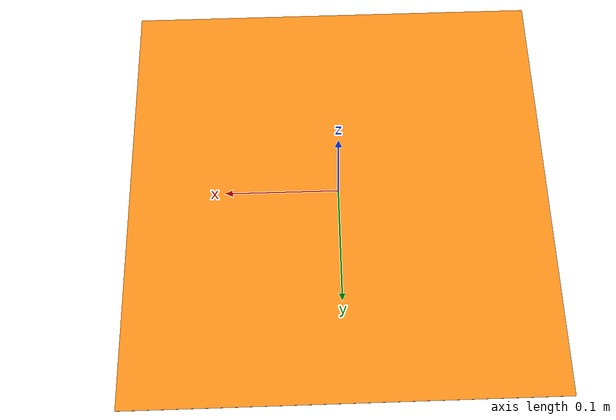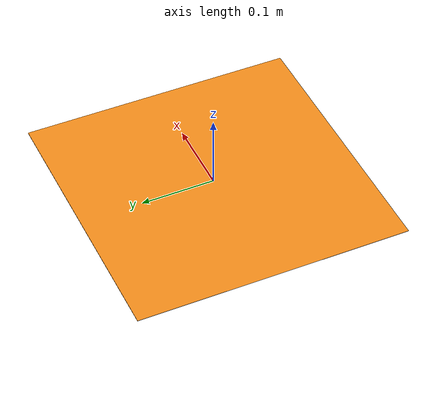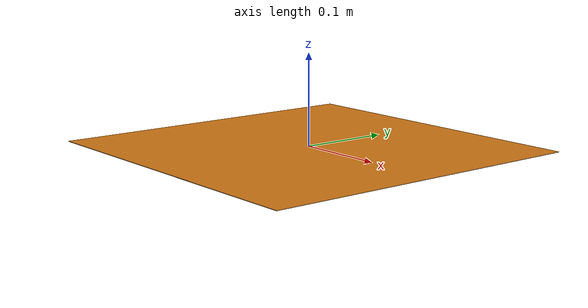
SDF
<?xml version='1.0'?>
<sdf version='1.6'>
  <model name='unloading_station_0'>
    <link name='docking_station1'>
      <inertial>
        <mass>1</mass>
        <inertia>
          <ixx>0.166667</ixx>
          <ixy>0</ixy>
          <ixz>0</ixz>
          <iyy>0.166667</iyy>
          <iyz>0</iyz>
          <izz>0.166667</izz>
        </inertia>
      </inertial>
      <self_collide>0</self_collide>
      <kinematic>0</kinematic>
      <gravity>1</gravity>
      <enable_wind>0</enable_wind>
      <pose frame=''>0 0 0 0 -0 0</pose>
      <visual name='visual'>
        <geometry>
          <box>
            <size>0.37 0.37 0.0005</size>
          </box>
        </geometry>
        <material>
          <script>
            <name>Gazebo/Orange</name>
            <uri>file://media/materials/scripts/gazebo.material</uri>
          </script>
        </material>
        <pose frame=''>0 0 0 0 -0 0</pose>
        <transparency>0</transparency>
        <cast_shadows>1</cast_shadows>
      </visual>
      <collision name='collision'>
        <laser_retro>0</laser_retro>
        <max_contacts>10</max_contacts>
        <pose frame=''>0 0 0 0 -0 0</pose>
        <geometry>
          <box>
            <size>0.37 0.37 0.0005</size>
          </box>
        </geometry>
        <surface>
          <friction>
            <ode>
              <mu>1</mu>
              <mu2>1</mu2>
              <fdir1>0 0 0</fdir1>
              <slip1>0</slip1>
              <slip2>0</slip2>
            </ode>
            <torsional>
              <coefficient>1</coefficient>
              <patch_radius>0</patch_radius>
              <surface_radius>0</surface_radius>
              <use_patch_radius>1</use_patch_radius>
              <ode>
                <slip>0</slip>
              </ode>
            </torsional>
          </friction>
          <bounce>
            <restitution_coefficient>0</restitution_coefficient>
            <threshold>1e+06</threshold>
          </bounce>
          <contact>
            <collide_without_contact>0</collide_without_contact>
            <collide_without_contact_bitmask>1</collide_without_contact_bitmask>
            <collide_bitmask>1</collide_bitmask>
            <ode>
              <soft_cfm>0</soft_cfm>
              <soft_erp>0.2</soft_erp>
              <kp>1e+13</kp>
              <kd>1</kd>
              <max_vel>0.01</max_vel>
              <min_depth>0</min_depth>
            </ode>
            <bullet>
              <split_impulse>1</split_impulse>
              <split_impulse_penetration_threshold>-0.01</split_impulse_penetration_threshold>
              <soft_cfm>0</soft_cfm>
              <soft_erp>0.2</soft_erp>
              <kp>1e+13</kp>
              <kd>1</kd>
            </bullet>
          </contact>
        </surface>
      </collision>
    </link>
    <static>0</static>
    <allow_auto_disable>1</allow_auto_disable>
  </model>
</sdf>
